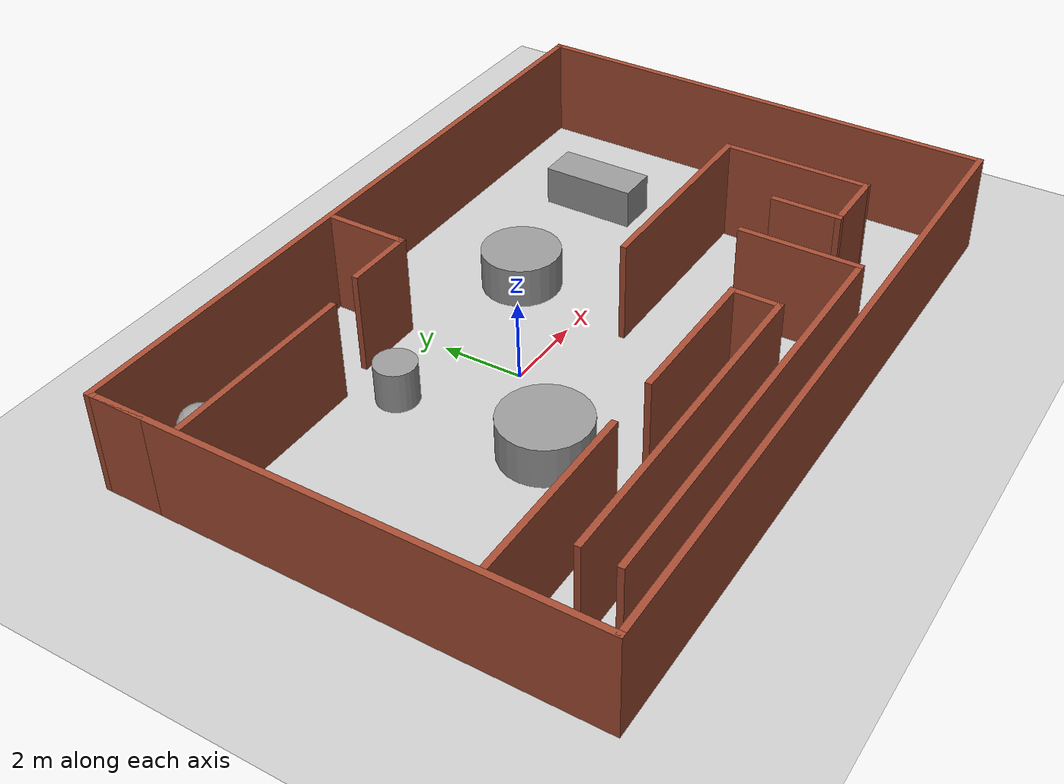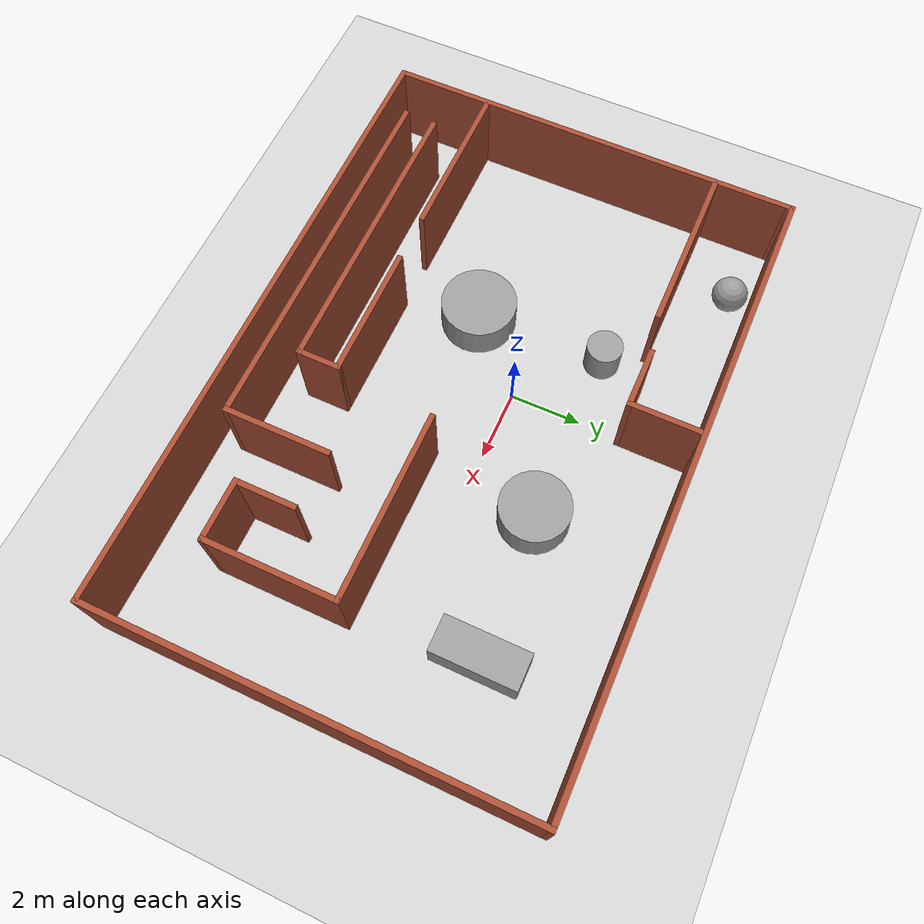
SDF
<sdf version="1.7">
 <world name="default">
  <light name="sun" type="directional">
   <pose>0 0 10 0 -0 0</pose>
   <diffuse>0.8 0.8 0.8 1</diffuse>
   <specular>0.2 0.2 0.2 1</specular>
   <attenuation>
    <range>1000</range>
    <constant>0.9</constant>
    <linear>0.01</linear>
    <quadratic>0.001</quadratic>
   </attenuation>
   <direction>-0.5 0.1 -0.9</direction>
   <spot><inner_angle>0</inner_angle><outer_angle>0</outer_angle><falloff>0</falloff></spot>
  </light>
  <model name="ground_plane">
   <static>1</static>
   <link name="link">
    <collision name="collision">
     <geometry><plane><normal>0 0 1</normal><size>100 100</size></plane></geometry>
     <surface>
      <contact><collide_bitmask>65535</collide_bitmask></contact>
      <friction><ode><mu>100</mu><mu2>50</mu2></ode></friction>
     </surface>
    </collision>
    <visual name="visual">
     <cast_shadows>0</cast_shadows>
     <geometry><plane><normal>0 0 1</normal><size>100 100</size></plane></geometry>
     <material>
      <script><uri>file://media/materials/scripts/gazebo.material</uri><name>Gazebo/Grey</name></script>
     </material>
    </visual>
   </link>
  </model>
  <gravity>0 0 -9.8</gravity>
  <magnetic_field>6e-06 2.3e-05 -4.2e-05</magnetic_field>
  <atmosphere type="adiabatic"/>
  <physics type="ode">
   <max_step_size>0.001</max_step_size>
   <real_time_factor>1</real_time_factor>
   <real_time_update_rate>1000</real_time_update_rate>
  </physics>
  <scene><ambient>0.4 0.4 0.4 1</ambient><background>0.7 0.7 0.7 1</background><shadows>1</shadows></scene>
  <spherical_coordinates>
   <surface_model>EARTH_WGS84</surface_model>
   <latitude_deg>0</latitude_deg>
   <longitude_deg>0</longitude_deg>
   <elevation>0</elevation>
   <heading_deg>0</heading_deg>
  </spherical_coordinates>
  <model name="Untitled..">
   <pose>1.39314 -0.779549 0 0 -0 0</pose>
   <link name="Wall_0">
    <collision name="Wall_0_Collision">
     <geometry><box><size>11.75 0.15 2.5</size></box></geometry>
     <pose>0 0 1.25 0 -0 0</pose>
    </collision>
    <visual name="Wall_0_Visual">
     <pose>0 0 1.25 0 -0 0</pose>
     <geometry><box><size>11.75 0.15 2.5</size></box></geometry>
     <material>
      <script><uri>file://media/materials/scripts/gazebo.material</uri><name>Gazebo/Bricks</name></script>
      <ambient>1 1 1 1</ambient>
     </material>
     <meta><layer>0</layer></meta>
    </visual>
    <pose>-8.675 -0.125 0 0 -0 -1.5708</pose>
   </link>
   <link name="Wall_1">
    <collision name="Wall_1_Collision">
     <geometry><box><size>17.5 0.15 2.5</size></box></geometry>
     <pose>0 0 1.25 0 -0 0</pose>
    </collision>
    <visual name="Wall_1_Visual">
     <pose>0 0 1.25 0 -0 0</pose>
     <geometry><box><size>17.5 0.15 2.5</size></box></geometry>
     <material>
      <script><uri>file://media/materials/scripts/gazebo.material</uri><name>Gazebo/Bricks</name></script>
      <ambient>1 1 1 1</ambient>
     </material>
     <meta><layer>0</layer></meta>
    </visual>
    <pose>0 -5.925 0 0 -0 0</pose>
   </link>
   <link name="Wall_10">
    <collision name="Wall_10_Collision">
     <geometry><box><size>8.25 0.15 2.5</size></box></geometry>
     <pose>0 0 1.25 0 -0 0</pose>
    </collision>
    <visual name="Wall_10_Visual">
     <pose>0 0 1.25 0 -0 0</pose>
     <geometry><box><size>8.25 0.15 2.5</size></box></geometry>
     <material>
      <script><uri>file://media/materials/scripts/gazebo.material</uri><name>Gazebo/Bricks</name></script>
      <ambient>1 1 1 1</ambient>
     </material>
     <meta><layer>0</layer></meta>
    </visual>
    <pose>-3.22451 -4.31005 0 0 -0 3.14159</pose>
   </link>
   <link name="Wall_12">
    <collision name="Wall_12_Collision">
     <geometry><box><size>5.25 0.15 2.5</size></box></geometry>
     <pose>0 0 1.25 0 -0 0</pose>
    </collision>
    <visual name="Wall_12_Visual">
     <pose>0 0 1.25 0 -0 0</pose>
     <geometry><box><size>5.25 0.15 2.5</size></box></geometry>
     <material>
      <script><uri>file://media/materials/scripts/gazebo.material</uri><name>Gazebo/Bricks</name></script>
      <ambient>1 1 1 1</ambient>
     </material>
     <meta><layer>0</layer></meta>
    </visual>
    <pose>3.65198 -0.431325 0 0 -0 0</pose>
   </link>
   <link name="Wall_13">
    <collision name="Wall_13_Collision">
     <geometry><box><size>3.75 0.15 2.5</size></box></geometry>
     <pose>0 0 1.25 0 -0 0</pose>
    </collision>
    <visual name="Wall_13_Visual">
     <pose>0 0 1.25 0 -0 0</pose>
     <geometry><box><size>3.75 0.15 2.5</size></box></geometry>
     <material>
      <script><uri>file://media/materials/scripts/gazebo.material</uri><name>Gazebo/Bricks</name></script>
      <ambient>1 1 1 1</ambient>
     </material>
     <meta><layer>0</layer></meta>
    </visual>
    <pose>6.20198 -2.23133 0 0 -0 -1.5708</pose>
   </link>
   <link name="Wall_14">
    <collision name="Wall_14_Collision">
     <geometry><box><size>1.75 0.15 2.5</size></box></geometry>
     <pose>0 0 1.25 0 -0 0</pose>
    </collision>
    <visual name="Wall_14_Visual">
     <pose>0 0 1.25 0 -0 0</pose>
     <geometry><box><size>1.75 0.15 2.5</size></box></geometry>
     <material>
      <script><uri>file://media/materials/scripts/gazebo.material</uri><name>Gazebo/Bricks</name></script>
      <ambient>1 1 1 1</ambient>
     </material>
     <meta><layer>0</layer></meta>
    </visual>
    <pose>5.40198 -4.03132 0 0 -0 3.14159</pose>
   </link>
   <link name="Wall_15">
    <collision name="Wall_15_Collision">
     <geometry><box><size>1.75 0.15 2.5</size></box></geometry>
     <pose>0 0 1.25 0 -0 0</pose>
    </collision>
    <visual name="Wall_15_Visual">
     <pose>0 0 1.25 0 -0 0</pose>
     <geometry><box><size>1.75 0.15 2.5</size></box></geometry>
     <material>
      <script><uri>file://media/materials/scripts/gazebo.material</uri><name>Gazebo/Bricks</name></script>
      <ambient>1 1 1 1</ambient>
     </material>
     <meta><layer>0</layer></meta>
    </visual>
    <pose>4.60198 -3.23133 0 0 -0 1.5708</pose>
   </link>
   <link name="Wall_17">
    <collision name="Wall_17_Collision">
     <geometry><box><size>3 0.15 2.5</size></box></geometry>
     <pose>0 0 1.25 0 -0 0</pose>
    </collision>
    <visual name="Wall_17_Visual">
     <pose>0 0 1.25 0 -0 0</pose>
     <geometry><box><size>3 0.15 2.5</size></box></geometry>
     <material>
      <script><uri>file://media/materials/scripts/gazebo.material</uri><name>Gazebo/Bricks</name></script>
      <ambient>1 1 1 1</ambient>
     </material>
     <meta><layer>0</layer></meta>
    </visual>
    <pose>3.02307 -3.77742 0 0 -0 -1.5708</pose>
   </link>
   <link name="Wall_18">
    <collision name="Wall_18_Collision">
     <geometry><box><size>10.5 0.15 2.5</size></box></geometry>
     <pose>0 0 1.25 0 -0 0</pose>
    </collision>
    <visual name="Wall_18_Visual">
     <pose>0 0 1.25 0 -0 0</pose>
     <geometry><box><size>10.5 0.15 2.5</size></box></geometry>
     <material>
      <script><uri>file://media/materials/scripts/gazebo.material</uri><name>Gazebo/Bricks</name></script>
      <ambient>1 1 1 1</ambient>
     </material>
     <meta><layer>0</layer></meta>
    </visual>
    <pose>-2.15193 -5.20242 0 0 -0 3.14159</pose>
   </link>
   <link name="Wall_2">
    <collision name="Wall_2_Collision">
     <geometry><box><size>12 0.15 2.5</size></box></geometry>
     <pose>0 0 1.25 0 -0 0</pose>
    </collision>
    <visual name="Wall_2_Visual">
     <pose>0 0 1.25 0 -0 0</pose>
     <geometry><box><size>12 0.15 2.5</size></box></geometry>
     <material>
      <script><uri>file://media/materials/scripts/gazebo.material</uri><name>Gazebo/Bricks</name></script>
      <ambient>1 1 1 1</ambient>
     </material>
     <meta><layer>0</layer></meta>
    </visual>
    <pose>8.675 -0 0 0 -0 1.5708</pose>
   </link>
   <link name="Wall_21">
    <collision name="Wall_21_Collision">
     <geometry><box><size>4.75 0.15 2.5</size></box></geometry>
     <pose>0 0 1.25 0 -0 0</pose>
    </collision>
    <visual name="Wall_21_Visual">
     <pose>0 0 1.25 0 -0 0</pose>
     <geometry><box><size>4.75 0.15 2.5</size></box></geometry>
     <material>
      <script><uri>file://media/materials/scripts/gazebo.material</uri><name>Gazebo/Bricks</name></script>
      <ambient>1 1 1 1</ambient>
     </material>
     <meta><layer>0</layer></meta>
    </visual>
    <pose>-6.27208 3.7196 0 0 -0 0</pose>
   </link>
   <link name="Wall_23">
    <collision name="Wall_23_Collision">
     <geometry><box><size>2 0.15 2.5</size></box></geometry>
     <pose>0 0 1.25 0 -0 0</pose>
    </collision>
    <visual name="Wall_23_Visual">
     <pose>0 0 1.25 0 -0 0</pose>
     <geometry><box><size>2 0.15 2.5</size></box></geometry>
     <material>
      <script><uri>file://media/materials/scripts/gazebo.material</uri><name>Gazebo/Bricks</name></script>
      <ambient>1 1 1 1</ambient>
     </material>
     <meta><layer>0</layer></meta>
    </visual>
    <pose>-1.26508 4.85292 0 0 -0 -1.5708</pose>
   </link>
   <link name="Wall_24">
    <collision name="Wall_24_Collision">
     <geometry><box><size>1.75 0.15 2.5</size></box></geometry>
     <pose>0 0 1.25 0 -0 0</pose>
    </collision>
    <visual name="Wall_24_Visual">
     <pose>0 0 1.25 0 -0 0</pose>
     <geometry><box><size>1.75 0.15 2.5</size></box></geometry>
     <material>
      <script><uri>file://media/materials/scripts/gazebo.material</uri><name>Gazebo/Bricks</name></script>
      <ambient>1 1 1 1</ambient>
     </material>
     <meta><layer>0</layer></meta>
    </visual>
    <pose>-2.06508 3.92792 0 0 -0 3.14159</pose>
   </link>
   <link name="Wall_3">
    <collision name="Wall_3_Collision">
     <geometry><box><size>17.5 0.15 2.5</size></box></geometry>
     <pose>0 0 1.25 0 -0 0</pose>
    </collision>
    <visual name="Wall_3_Visual">
     <pose>0 0 1.25 0 -0 0</pose>
     <geometry><box><size>17.5 0.15 2.5</size></box></geometry>
     <material>
      <script><uri>file://media/materials/scripts/gazebo.material</uri><name>Gazebo/Bricks</name></script>
      <ambient>1 1 1 1</ambient>
     </material>
     <meta><layer>0</layer></meta>
    </visual>
    <pose>0 5.925 0 0 -0 3.14159</pose>
   </link>
   <link name="Wall_4">
    <collision name="Wall_4_Collision">
     <geometry><box><size>1.5 0.15 2.5</size></box></geometry>
     <pose>0 0 1.25 0 -0 0</pose>
    </collision>
    <visual name="Wall_4_Visual">
     <pose>0 0 1.25 0 -0 0</pose>
     <geometry><box><size>1.5 0.15 2.5</size></box></geometry>
     <material>
      <script><uri>file://media/materials/scripts/gazebo.material</uri><name>Gazebo/Bricks</name></script>
      <ambient>1 1 1 1</ambient>
     </material>
     <meta><layer>0</layer></meta>
    </visual>
    <pose>-8.675 5.25 0 0 -0 -1.5708</pose>
   </link>
   <link name="Wall_6">
    <collision name="Wall_6_Collision">
     <geometry><box><size>4.5 0.15 2.5</size></box></geometry>
     <pose>0 0 1.25 0 -0 0</pose>
    </collision>
    <visual name="Wall_6_Visual">
     <pose>0 0 1.25 0 -0 0</pose>
     <geometry><box><size>4.5 0.15 2.5</size></box></geometry>
     <material>
      <script><uri>file://media/materials/scripts/gazebo.material</uri><name>Gazebo/Bricks</name></script>
      <ambient>1 1 1 1</ambient>
     </material>
     <meta><layer>0</layer></meta>
    </visual>
    <pose>-6.39708 -3.21005 0 0 -0 0</pose>
   </link>
   <link name="Wall_8">
    <collision name="Wall_8_Collision">
     <geometry><box><size>3.75 0.15 2.5</size></box></geometry>
     <pose>0 0 1.25 0 -0 0</pose>
    </collision>
    <visual name="Wall_8_Visual">
     <pose>0 0 1.25 0 -0 0</pose>
     <geometry><box><size>3.75 0.15 2.5</size></box></geometry>
     <material>
      <script><uri>file://media/materials/scripts/gazebo.material</uri><name>Gazebo/Bricks</name></script>
      <ambient>1 1 1 1</ambient>
     </material>
     <meta><layer>0</layer></meta>
    </visual>
    <pose>-0.974506 -3.21005 0 0 -0 0</pose>
   </link>
   <link name="Wall_9">
    <collision name="Wall_9_Collision">
     <geometry><box><size>1.25 0.15 2.5</size></box></geometry>
     <pose>0 0 1.25 0 -0 0</pose>
    </collision>
    <visual name="Wall_9_Visual">
     <pose>0 0 1.25 0 -0 0</pose>
     <geometry><box><size>1.25 0.15 2.5</size></box></geometry>
     <material>
      <script><uri>file://media/materials/scripts/gazebo.material</uri><name>Gazebo/Bricks</name></script>
      <ambient>1 1 1 1</ambient>
     </material>
     <meta><layer>0</layer></meta>
    </visual>
    <pose>0.825494 -3.76005 0 0 -0 -1.5708</pose>
   </link>
   <static>1</static>
  </model>
  <model name="unit_cylinder">
   <pose>-1.98174 1.87758 0.499998 3e-06 -4e-06 0</pose>
   <link name="link">
    <inertial>
     <mass>1</mass>
     <inertia><ixx>0.145833</ixx><ixy>0</ixy><ixz>0</ixz><iyy>0.145833</iyy><iyz>0</iyz><izz>0.125</izz></inertia>
    </inertial>
    <collision name="collision">
     <geometry><cylinder><radius>0.5</radius><length>1</length></cylinder></geometry>
    </collision>
    <visual name="visual">
     <geometry><cylinder><radius>0.5</radius><length>1</length></cylinder></geometry>
     <material>
      <script><name>Gazebo/Grey</name><uri>file://media/materials/scripts/gazebo.material</uri></script>
     </material>
    </visual>
   </link>
  </model>
  <model name="unit_cylinder_0">
   <pose>3.07066 1.91926 0.499994 6e-06 6e-06 -0</pose>
   <link name="link">
    <inertial>
     <mass>1</mass>
     <inertia><ixx>0.145833</ixx><ixy>0</ixy><ixz>0</ixz><iyy>0.145833</iyy><iyz>0</iyz><izz>0.125</izz></inertia>
    </inertial>
    <collision name="collision">
     <geometry><cylinder><radius>0.96951</radius><length>1</length></cylinder></geometry>
    </collision>
    <visual name="visual">
     <geometry><cylinder><radius>0.96951</radius><length>1</length></cylinder></geometry>
     <material>
      <script><name>Gazebo/Grey</name><uri>file://media/materials/scripts/gazebo.material</uri></script>
     </material>
    </visual>
   </link>
  </model>
  <model name="unit_box">
   <pose>7.02115 2.14668 0.5 0 -0 0</pose>
   <link name="link">
    <inertial>
     <mass>1</mass>
     <inertia>
      <ixx>0.166667</ixx>
      <ixy>0</ixy>
      <ixz>0</ixz>
      <iyy>0.166667</iyy>
      <iyz>0</iyz>
      <izz>0.166667</izz>
     </inertia>
    </inertial>
    <collision name="collision"><geometry><box><size>1 2.37545 1</size></box></geometry></collision>
    <visual name="visual">
     <geometry><box><size>1 2.37545 1</size></box></geometry>
     <material>
      <script><name>Gazebo/Grey</name><uri>file://media/materials/scripts/gazebo.material</uri></script>
     </material>
    </visual>
   </link>
  </model>
  <model name="unit_sphere">
   <pose>-5.30335 4.46976 0.5 0 -0 0</pose>
   <link name="link">
    <inertial>
     <mass>1</mass>
     <inertia><ixx>0.1</ixx><ixy>0</ixy><ixz>0</ixz><iyy>0.1</iyy><iyz>0</iyz><izz>0.1</izz></inertia>
    </inertial>
    <collision name="collision"><geometry><sphere><radius>0.5</radius></sphere></geometry></collision>
    <visual name="visual">
     <geometry><sphere><radius>0.5</radius></sphere></geometry>
     <material>
      <script><name>Gazebo/Grey</name><uri>file://media/materials/scripts/gazebo.material</uri></script>
     </material>
    </visual>
   </link>
  </model>
  <model name="unit_cylinder_1">
   <pose>-1.84718 -1.83558 0.499993 -7e-06 -7e-06 1e-06</pose>
   <link name="link">
    <inertial>
     <mass>1</mass>
     <inertia><ixx>0.145833</ixx><ixy>0</ixy><ixz>0</ixz><iyy>0.145833</iyy><iyz>0</iyz><izz>0.125</izz></inertia>
    </inertial>
    <collision name="collision">
     <geometry><cylinder><radius>1.06388</radius><length>1</length></cylinder></geometry>
    </collision>
    <visual name="visual">
     <geometry><cylinder><radius>1.06388</radius><length>1</length></cylinder></geometry>
     <material>
      <script><name>Gazebo/Grey</name><uri>file://media/materials/scripts/gazebo.material</uri></script>
     </material>
    </visual>
   </link>
  </model>
 </world>
</sdf>
